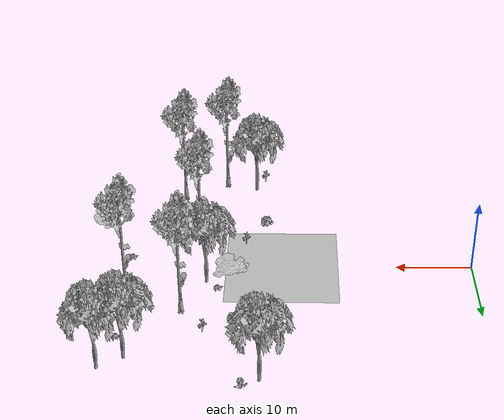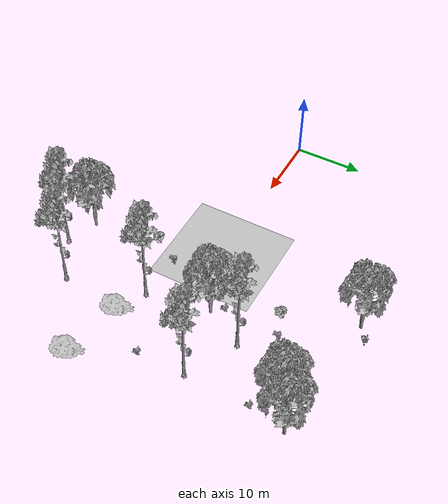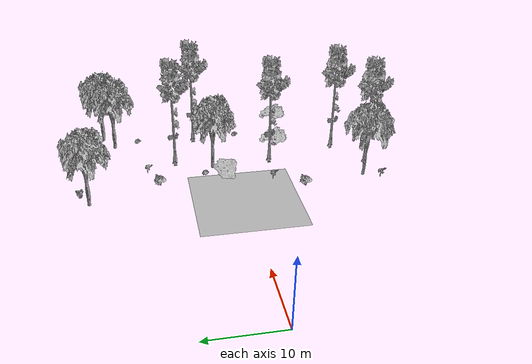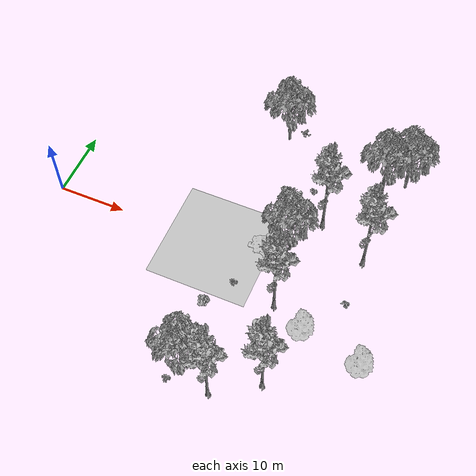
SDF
<sdf version="1.7">
 <world name="default">
  <model name="ground_plane">
   <static>1</static>
   <link name="link">
    <collision name="collision">
     <pose>25.0 0 0 0 -0 0</pose>
     <geometry><plane><normal>0 0 1</normal><size>50 50</size></plane></geometry>
     <surface><contact><ode><min_depth>0.01</min_depth><max_vel>0</max_vel></ode></contact></surface>
    </collision>
    <visual name="grass">
     <pose>25.0 0 0 0 -0 0</pose>
     <cast_shadows>0</cast_shadows>
     <geometry>
      <mesh>
       <scale>0.2731578947368421 0.2802702702702703 0.1</scale>
       <uri>file://grass_plane/meshes/grass_plane.dae</uri>
      </mesh>
     </geometry>
    </visual>
   </link>
  </model>
  <model name="Tree 0">
   <static>1</static>
   <pose>34.63923748354428 3.3849683342972945 0 1.57079 -0 0</pose>
   <link name="link">
    <collision name="collision">
     <geometry><mesh><scale>3.5 5 3.5</scale><uri>model://tree_2/meshes/tree_2.obj</uri></mesh></geometry>
    </collision>
    <visual name="visual">
     <geometry><mesh><scale>3.5 5 3.5</scale><uri>model://tree_2/meshes/tree_2.obj</uri></mesh></geometry>
    </visual>
   </link>
  </model>
  <model name="Tree 2">
   <static>1</static>
   <pose>46.38923748354428 20.051635000963955 0 1.57079 -0 0</pose>
   <link name="link">
    <collision name="collision">
     <geometry><mesh><scale>3.5 5 3.5</scale><uri>model://tree_2/meshes/tree_2.obj</uri></mesh></geometry>
    </collision>
    <visual name="visual">
     <geometry><mesh><scale>3.5 5 3.5</scale><uri>model://tree_2/meshes/tree_2.obj</uri></mesh></geometry>
    </visual>
   </link>
  </model>
  <model name="Tree 4">
   <static>1</static>
   <pose>28.764237483544274 -18.83725388792494 0 1.57079 -0 0</pose>
   <link name="link">
    <collision name="collision">
     <geometry><mesh><scale>3.5 5 3.5</scale><uri>model://tree_2/meshes/tree_2.obj</uri></mesh></geometry>
    </collision>
    <visual name="visual">
     <geometry><mesh><scale>3.5 5 3.5</scale><uri>model://tree_2/meshes/tree_2.obj</uri></mesh></geometry>
    </visual>
   </link>
  </model>
  <model name="Tree 6">
   <static>1</static>
   <pose>40.51423748354428 -7.726142776813834 0 1.57079 -0 0</pose>
   <link name="link">
    <collision name="collision">
     <geometry><mesh><scale>4 2.5 4</scale><uri>model://tree_1/meshes/tree_1.obj</uri></mesh></geometry>
    </collision>
    <visual name="visual">
     <geometry><mesh><scale>4 2.5 4</scale><uri>model://tree_1/meshes/tree_1.obj</uri></mesh></geometry>
    </visual>
   </link>
  </model>
  <model name="Tree 8">
   <static>1</static>
   <pose>37.57673748354428 8.940523889852848 0 1.57079 -0 0</pose>
   <link name="link">
    <collision name="collision">
     <geometry><mesh><scale>3.5 5 3.5</scale><uri>model://tree_9/meshes/tree_9.obj</uri></mesh></geometry>
    </collision>
    <visual name="visual">
     <geometry><mesh><scale>3.5 5 3.5</scale><uri>model://tree_9/meshes/tree_9.obj</uri></mesh></geometry>
    </visual>
   </link>
  </model>
  <model name="Tree 10">
   <static>1</static>
   <pose>49.32673748354428 -9.577994628665687 0 1.57079 -0 0</pose>
   <link name="link">
    <collision name="collision">
     <geometry><mesh><scale>4 2.5 4</scale><uri>model://tree_1/meshes/tree_1.obj</uri></mesh></geometry>
    </collision>
    <visual name="visual">
     <geometry><mesh><scale>4 2.5 4</scale><uri>model://tree_1/meshes/tree_1.obj</uri></mesh></geometry>
    </visual>
   </link>
  </model>
  <model name="Tree 12">
   <static>1</static>
   <pose>31.701737483544274 1.5331164824454397 0 1.57079 -0 0</pose>
   <link name="link">
    <collision name="collision">
     <geometry><mesh><scale>3 2 3</scale><uri>model://tree_3/meshes/tree_3.obj</uri></mesh></geometry>
    </collision>
    <visual name="visual">
     <geometry><mesh><scale>3 2 3</scale><uri>model://tree_3/meshes/tree_3.obj</uri></mesh></geometry>
    </visual>
   </link>
  </model>
  <model name="Tree 14">
   <static>1</static>
   <pose>43.45173748354428 18.1997831491121 0 1.57079 -0 0</pose>
   <link name="link">
    <collision name="collision">
     <geometry><mesh><scale>3.5 5 3.5</scale><uri>model://tree_2/meshes/tree_2.obj</uri></mesh></geometry>
    </collision>
    <visual name="visual">
     <geometry><mesh><scale>3.5 5 3.5</scale><uri>model://tree_2/meshes/tree_2.obj</uri></mesh></geometry>
    </visual>
   </link>
  </model>
  <model name="Tree 16">
   <static>1</static>
   <pose>33.17048748354428 -20.689105739776792 0 1.57079 -0 0</pose>
   <link name="link">
    <collision name="collision">
     <geometry><mesh><scale>3.5 5 3.5</scale><uri>model://tree_9/meshes/tree_9.obj</uri></mesh></geometry>
    </collision>
    <visual name="visual">
     <geometry><mesh><scale>3.5 5 3.5</scale><uri>model://tree_9/meshes/tree_9.obj</uri></mesh></geometry>
    </visual>
   </link>
  </model>
  <model name="Tree 18">
   <static>1</static>
   <pose>44.92048748354428 5.236820186149142 0 1.57079 -0 0</pose>
   <link name="link">
    <collision name="collision">
     <geometry><mesh><scale>3.5 5 3.5</scale><uri>model://tree_9/meshes/tree_9.obj</uri></mesh></geometry>
    </collision>
    <visual name="visual">
     <geometry><mesh><scale>3.5 5 3.5</scale><uri>model://tree_9/meshes/tree_9.obj</uri></mesh></geometry>
    </visual>
   </link>
  </model>
  <model name="Tree 20">
   <static>1</static>
   <pose>27.295487483544274 21.90348685281581 0 1.57079 -0 0</pose>
   <link name="link">
    <collision name="collision">
     <geometry><mesh><scale>3.5 5 3.5</scale><uri>model://tree_2/meshes/tree_2.obj</uri></mesh></geometry>
    </collision>
    <visual name="visual">
     <geometry><mesh><scale>3.5 5 3.5</scale><uri>model://tree_2/meshes/tree_2.obj</uri></mesh></geometry>
    </visual>
   </link>
  </model>
  <model name="Tree 22">
   <static>1</static>
   <pose>39.04548748354428 -16.985402036073094 0 1.57079 -0 0</pose>
   <link name="link">
    <collision name="collision">
     <geometry><mesh><scale>3.5 5 3.5</scale><uri>model://tree_9/meshes/tree_9.obj</uri></mesh></geometry>
    </collision>
    <visual name="visual">
     <geometry><mesh><scale>3.5 5 3.5</scale><uri>model://tree_9/meshes/tree_9.obj</uri></mesh></geometry>
    </visual>
   </link>
  </model>
  <model name="Tree 24">
   <static>1</static>
   <pose>36.10798748354428 -5.874290924961983 0 1.57079 -0 0</pose>
   <link name="link">
    <collision name="collision">
     <geometry><mesh><scale>3.5 5 3.5</scale><uri>model://tree_9/meshes/tree_9.obj</uri></mesh></geometry>
    </collision>
    <visual name="visual">
     <geometry><mesh><scale>3.5 5 3.5</scale><uri>model://tree_9/meshes/tree_9.obj</uri></mesh></geometry>
    </visual>
   </link>
  </model>
  <model name="Bush 1">
   <static>1</static>
   <pose>44.8732821464961 -1.8540728125538912 0 1.57079 -0 0</pose>
   <link name="link">
    <collision name="collision">
     <geometry><mesh><scale>2 2 2</scale><uri>model://bush_2/meshes/bush_2.obj</uri></mesh></geometry>
     <surface><contact><collide_without_contact>false</collide_without_contact></contact></surface>
    </collision>
    <visual name="visual">
     <geometry><mesh><scale>2 2 2</scale><uri>model://bush_2/meshes/bush_2.obj</uri></mesh></geometry>
    </visual>
   </link>
  </model>
  <model name="Bush 3">
   <static>1</static>
   <pose>34.58443987599804 13.394350291020558 0 1.57079 -0 0</pose>
   <link name="link">
    <collision name="collision">
     <geometry><mesh><scale>2 2 2</scale><uri>model://bush_5/meshes/bush_5.obj</uri></mesh></geometry>
     <surface><contact><collide_without_contact>false</collide_without_contact></contact></surface>
    </collision>
    <visual name="visual">
     <geometry><mesh><scale>2 2 2</scale><uri>model://bush_5/meshes/bush_5.obj</uri></mesh></geometry>
    </visual>
   </link>
  </model>
  <model name="Bush 4">
   <static>1</static>
   <pose>44.963554619171866 14.498627310153552 0 1.57079 -0 0</pose>
   <link name="link">
    <collision name="collision">
     <geometry><mesh><scale>2 2 2</scale><uri>model://bush_2/meshes/bush_2.obj</uri></mesh></geometry>
     <surface><contact><collide_without_contact>false</collide_without_contact></contact></surface>
    </collision>
    <visual name="visual">
     <geometry><mesh><scale>2 2 2</scale><uri>model://bush_2/meshes/bush_2.obj</uri></mesh></geometry>
    </visual>
   </link>
  </model>
  <model name="Bush 5">
   <static>1</static>
   <pose>27.205888548689423 -9.371152383672543 0 1.57079 -0 0</pose>
   <link name="link">
    <collision name="collision">
     <geometry><mesh><scale>2 2 2</scale><uri>model://bush_1/meshes/bush_1.obj</uri></mesh></geometry>
     <surface><contact><collide_without_contact>false</collide_without_contact></contact></surface>
    </collision>
    <visual name="visual">
     <geometry><mesh><scale>2 2 2</scale><uri>model://bush_1/meshes/bush_1.obj</uri></mesh></geometry>
    </visual>
   </link>
  </model>
  <model name="Bush 6">
   <static>1</static>
   <pose>33.1891817057788 4.704120672186761 0 1.57079 -0 0</pose>
   <link name="link">
    <collision name="collision">
     <geometry><mesh><scale>2 2 2</scale><uri>model://bush_2/meshes/bush_2.obj</uri></mesh></geometry>
     <surface><contact><collide_without_contact>false</collide_without_contact></contact></surface>
    </collision>
    <visual name="visual">
     <geometry><mesh><scale>2 2 2</scale><uri>model://bush_2/meshes/bush_2.obj</uri></mesh></geometry>
    </visual>
   </link>
  </model>
  <model name="Bush 7">
   <static>1</static>
   <pose>30.808608627766503 11.704714236111798 0 1.57079 -0 0</pose>
   <link name="link">
    <collision name="collision">
     <geometry><mesh><scale>2 2 2</scale><uri>model://bush_1/meshes/bush_1.obj</uri></mesh></geometry>
     <surface><contact><collide_without_contact>false</collide_without_contact></contact></surface>
    </collision>
    <visual name="visual">
     <geometry><mesh><scale>2 2 2</scale><uri>model://bush_1/meshes/bush_1.obj</uri></mesh></geometry>
    </visual>
   </link>
  </model>
  <model name="Bush 11">
   <static>1</static>
   <pose>29.437842033810043 23.225567260759895 0 1.57079 -0 0</pose>
   <link name="link">
    <collision name="collision">
     <geometry><mesh><scale>2 2 2</scale><uri>model://bush_4/meshes/bush_4.obj</uri></mesh></geometry>
     <surface><contact><collide_without_contact>false</collide_without_contact></contact></surface>
    </collision>
    <visual name="visual">
     <geometry><mesh><scale>2 2 2</scale><uri>model://bush_4/meshes/bush_4.obj</uri></mesh></geometry>
    </visual>
   </link>
  </model>
  <model name="Bush 12">
   <static>1</static>
   <pose>29.90889192872323 -5.01899516275483 0 1.57079 -0 0</pose>
   <link name="link">
    <collision name="collision">
     <geometry><mesh><scale>2 2 2</scale><uri>model://bush_5/meshes/bush_5.obj</uri></mesh></geometry>
     <surface><contact><collide_without_contact>false</collide_without_contact></contact></surface>
    </collision>
    <visual name="visual">
     <geometry><mesh><scale>2 2 2</scale><uri>model://bush_5/meshes/bush_5.obj</uri></mesh></geometry>
    </visual>
   </link>
  </model>
  <model name="Bush 16">
   <static>1</static>
   <pose>27.65998343407098 -21.069944941864726 0 1.57079 -0 0</pose>
   <link name="link">
    <collision name="collision">
     <geometry><mesh><scale>2 2 2</scale><uri>model://bush_5/meshes/bush_5.obj</uri></mesh></geometry>
     <surface><contact><collide_without_contact>false</collide_without_contact></contact></surface>
    </collision>
    <visual name="visual">
     <geometry><mesh><scale>2 2 2</scale><uri>model://bush_5/meshes/bush_5.obj</uri></mesh></geometry>
    </visual>
   </link>
  </model>
 </world>
</sdf>
